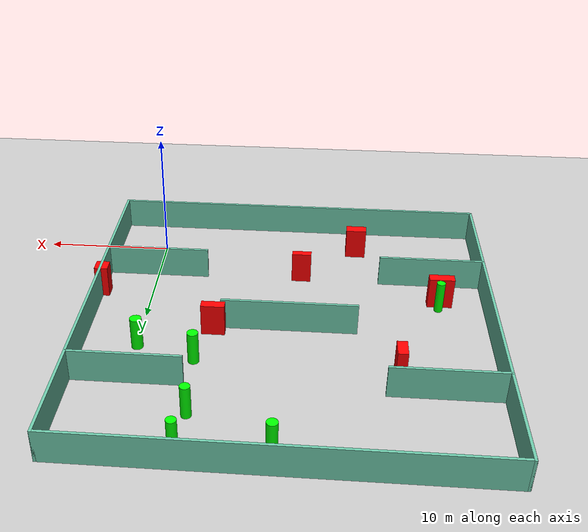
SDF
<sdf version="1.7">
 <world name="default">
  <light name="sun" type="directional">
   <pose>0 0 10 0 -0 0</pose>
   <diffuse>0.8 0.8 0.8 1</diffuse>
   <specular>0.2 0.2 0.2 1</specular>
   <attenuation>
    <range>1000</range>
    <constant>0.9</constant>
    <linear>0.01</linear>
    <quadratic>0.001</quadratic>
   </attenuation>
   <direction>-0.5 0.1 -0.9</direction>
   <spot><inner_angle>0</inner_angle><outer_angle>0</outer_angle><falloff>0</falloff></spot>
  </light>
  <model name="ground_plane">
   <static>1</static>
   <link name="link">
    <collision name="collision">
     <geometry><plane><normal>0 0 1</normal><size>100 100</size></plane></geometry>
     <surface>
      <contact><collide_bitmask>65535</collide_bitmask></contact>
      <friction><ode><mu>100</mu><mu2>50</mu2></ode></friction>
     </surface>
    </collision>
    <visual name="visual">
     <cast_shadows>0</cast_shadows>
     <geometry><plane><normal>0 0 1</normal><size>100 100</size></plane></geometry>
     <material>
      <script><uri>file://media/materials/scripts/gazebo.material</uri><name>Gazebo/Grey</name></script>
     </material>
    </visual>
   </link>
  </model>
  <gravity>0 0 -9.8</gravity>
  <magnetic_field>6e-06 2.3e-05 -4.2e-05</magnetic_field>
  <atmosphere type="adiabatic"/>
  <physics type="ode">
   <max_step_size>0.001</max_step_size>
   <real_time_factor>1</real_time_factor>
   <real_time_update_rate>1000</real_time_update_rate>
  </physics>
  <scene><ambient>0.4 0.4 0.4 1</ambient><background>0.7 0.7 0.7 1</background><shadows>1</shadows></scene>
  <spherical_coordinates>
   <surface_model>EARTH_WGS84</surface_model>
   <latitude_deg>0</latitude_deg>
   <longitude_deg>0</longitude_deg>
   <elevation>0</elevation>
   <heading_deg>0</heading_deg>
  </spherical_coordinates>
  <model name="my_base_walls">
   <link name="Wall_10">
    <collision name="Wall_10_Collision">
     <geometry><box><size>8.2 0.2 2.5</size></box></geometry>
     <pose>0 0 1.25 0 -0 0</pose>
    </collision>
    <visual name="Wall_10_Visual">
     <pose>0 0 1.25 0 -0 0</pose>
     <geometry><box><size>8.2 0.2 2.5</size></box></geometry>
     <material>
      <script><uri>file://media/materials/scripts/gazebo.material</uri><name>Gazebo/Grey</name></script>
      <ambient>0.435294 0.796078 0.67451 1</ambient>
     </material>
     <meta><layer>0</layer></meta>
    </visual>
    <pose>-11 -7 0 0 -0 0</pose>
   </link>
   <link name="Wall_12">
    <collision name="Wall_12_Collision">
     <geometry><box><size>8.2 0.2 2.5</size></box></geometry>
     <pose>0 0 1.25 0 -0 0</pose>
    </collision>
    <visual name="Wall_12_Visual">
     <pose>0 0 1.25 0 -0 0</pose>
     <geometry><box><size>8.2 0.2 2.5</size></box></geometry>
     <material>
      <script><uri>file://media/materials/scripts/gazebo.material</uri><name>Gazebo/Grey</name></script>
      <ambient>0.435294 0.796078 0.67451 1</ambient>
     </material>
     <meta><layer>0</layer></meta>
    </visual>
    <pose>-11 7 0 0 -0 0</pose>
   </link>
   <link name="Wall_14">
    <collision name="Wall_14_Collision">
     <geometry><box><size>8.2 0.2 2.5</size></box></geometry>
     <pose>0 0 1.25 0 -0 0</pose>
    </collision>
    <visual name="Wall_14_Visual">
     <pose>0 0 1.25 0 -0 0</pose>
     <geometry><box><size>8.2 0.2 2.5</size></box></geometry>
     <material>
      <script><uri>file://media/materials/scripts/gazebo.material</uri><name>Gazebo/Grey</name></script>
      <ambient>0.435294 0.796078 0.67451 1</ambient>
     </material>
     <meta><layer>0</layer></meta>
    </visual>
    <pose>11 7 0 0 -0 3.14159</pose>
   </link>
   <link name="Wall_16">
    <collision name="Wall_16_Collision">
     <geometry><box><size>10.2 0.2 2.5</size></box></geometry>
     <pose>0 0 1.25 0 -0 0</pose>
    </collision>
    <visual name="Wall_16_Visual">
     <pose>0 0 1.25 0 -0 0</pose>
     <geometry><box><size>10.2 0.2 2.5</size></box></geometry>
     <material>
      <script><uri>file://media/materials/scripts/gazebo.material</uri><name>Gazebo/Grey</name></script>
      <ambient>0.435294 0.796078 0.67451 1</ambient>
     </material>
     <meta><layer>0</layer></meta>
    </visual>
    <pose>0 0 0 0 -0 3.14159</pose>
   </link>
   <link name="Wall_2">
    <collision name="Wall_2_Collision">
     <geometry><box><size>30.2 0.2 2.5</size></box></geometry>
     <pose>0 0 1.25 0 -0 0</pose>
    </collision>
    <visual name="Wall_2_Visual">
     <pose>0 0 1.25 0 -0 0</pose>
     <geometry><box><size>30.2 0.2 2.5</size></box></geometry>
     <material>
      <script><uri>file://media/materials/scripts/gazebo.material</uri><name>Gazebo/Grey</name></script>
      <ambient>0.435294 0.796078 0.67451 1</ambient>
     </material>
     <meta><layer>0</layer></meta>
    </visual>
    <pose>0 -15 0 0 -0 3.14159</pose>
   </link>
   <link name="Wall_3">
    <collision name="Wall_3_Collision">
     <geometry><box><size>30.2 0.2 2.5</size></box></geometry>
     <pose>0 0 1.25 0 -0 0</pose>
    </collision>
    <visual name="Wall_3_Visual">
     <pose>0 0 1.25 0 -0 0</pose>
     <geometry><box><size>30.2 0.2 2.5</size></box></geometry>
     <material>
      <script><uri>file://media/materials/scripts/gazebo.material</uri><name>Gazebo/Grey</name></script>
      <ambient>0.435294 0.796078 0.67451 1</ambient>
     </material>
     <meta><layer>0</layer></meta>
    </visual>
    <pose>-15 0 0 0 -0 1.5708</pose>
   </link>
   <link name="Wall_4">
    <collision name="Wall_4_Collision">
     <geometry><box><size>30.2 0.2 2.5</size></box></geometry>
     <pose>0 0 1.25 0 -0 0</pose>
    </collision>
    <visual name="Wall_4_Visual">
     <pose>0 0 1.25 0 -0 0</pose>
     <geometry><box><size>30.2 0.2 2.5</size></box></geometry>
     <material>
      <script><uri>file://media/materials/scripts/gazebo.material</uri><name>Gazebo/Grey</name></script>
      <ambient>0.435294 0.796078 0.67451 1</ambient>
     </material>
     <meta><layer>0</layer></meta>
    </visual>
    <pose>0 15 0 0 -0 0</pose>
   </link>
   <link name="Wall_6">
    <collision name="Wall_6_Collision">
     <geometry><box><size>30.2 0.2 2.5</size></box></geometry>
     <pose>0 0 1.25 0 -0 0</pose>
    </collision>
    <visual name="Wall_6_Visual">
     <pose>0 0 1.25 0 -0 0</pose>
     <geometry><box><size>30.2 0.2 2.5</size></box></geometry>
     <material>
      <script><uri>file://media/materials/scripts/gazebo.material</uri><name>Gazebo/Grey</name></script>
      <ambient>0.435294 0.796078 0.67451 1</ambient>
     </material>
     <meta><layer>0</layer></meta>
    </visual>
    <pose>15 0 0 0 -0 1.5708</pose>
   </link>
   <link name="Wall_8">
    <collision name="Wall_8_Collision">
     <geometry><box><size>8.2 0.2 2.5</size></box></geometry>
     <pose>0 0 1.25 0 -0 0</pose>
    </collision>
    <visual name="Wall_8_Visual">
     <pose>0 0 1.25 0 -0 0</pose>
     <geometry><box><size>8.2 0.2 2.5</size></box></geometry>
     <material>
      <script><uri>file://media/materials/scripts/gazebo.material</uri><name>Gazebo/Grey</name></script>
      <ambient>0.435294 0.796078 0.67451 1</ambient>
     </material>
     <meta><layer>0</layer></meta>
    </visual>
    <pose>11 -7 0 0 -0 3.14159</pose>
   </link>
   <static>1</static>
   <pose>-11 11 0 0 -0 0</pose>
  </model>
  <model name="cylinder1">
   <static>1</static>
   <link name="link">
    <inertial>
     <mass>1</mass>
     <inertia><ixx>0.5</ixx><ixy>0</ixy><ixz>0</ixz><iyy>0.5</iyy><iyz>0</iyz><izz>1</izz></inertia>
    </inertial>
    <collision name="collision">
     <geometry><cylinder><radius>0.3910759092996346</radius><length>2.5</length></cylinder></geometry>
    </collision>
    <visual name="visual">
     <geometry><cylinder><radius>0.3910759092996346</radius><length>2.5</length></cylinder></geometry>
     <material>
      <ambient>0 1 0 1</ambient>
      <diffuse>0 1 0 1</diffuse>
      <specular>0.1 0.1 0.1 1</specular>
      <emissive>0 0 0 0</emissive>
     </material>
    </visual>
   </link>
   <pose>-10.543926389782811 24.044908329638787 1.25 0 0 0</pose>
  </model>
  <model name="cylinder2">
   <static>1</static>
   <link name="link">
    <inertial>
     <mass>1</mass>
     <inertia><ixx>0.5</ixx><ixy>0</ixy><ixz>0</ixz><iyy>0.5</iyy><iyz>0</iyz><izz>1</izz></inertia>
    </inertial>
    <collision name="collision">
     <geometry><cylinder><radius>0.3614001284814852</radius><length>2.5</length></cylinder></geometry>
    </collision>
    <visual name="visual">
     <geometry><cylinder><radius>0.3614001284814852</radius><length>2.5</length></cylinder></geometry>
     <material>
      <ambient>0 1 0 1</ambient>
      <diffuse>0 1 0 1</diffuse>
      <specular>0.1 0.1 0.1 1</specular>
      <emissive>0 0 0 0</emissive>
     </material>
    </visual>
   </link>
   <pose>-4.336738064915341 24.35209528997487 1.25 0 0 0</pose>
  </model>
  <model name="cylinder3">
   <static>1</static>
   <link name="link">
    <inertial>
     <mass>1</mass>
     <inertia><ixx>0.5</ixx><ixy>0</ixy><ixz>0</ixz><iyy>0.5</iyy><iyz>0</iyz><izz>1</izz></inertia>
    </inertial>
    <collision name="collision">
     <geometry><cylinder><radius>0.32779057666356853</radius><length>2.5</length></cylinder></geometry>
    </collision>
    <visual name="visual">
     <geometry><cylinder><radius>0.32779057666356853</radius><length>2.5</length></cylinder></geometry>
     <material>
      <ambient>0 1 0 1</ambient>
      <diffuse>0 1 0 1</diffuse>
      <specular>0.1 0.1 0.1 1</specular>
      <emissive>0 0 0 0</emissive>
     </material>
    </visual>
   </link>
   <pose>-22.41250791460306 7.441344668031153 1.25 0 0 0</pose>
  </model>
  <model name="cylinder4">
   <static>1</static>
   <link name="link">
    <inertial>
     <mass>1</mass>
     <inertia><ixx>0.5</ixx><ixy>0</ixy><ixz>0</ixz><iyy>0.5</iyy><iyz>0</iyz><izz>1</izz></inertia>
    </inertial>
    <collision name="collision">
     <geometry><cylinder><radius>0.43364310368049597</radius><length>2.5</length></cylinder></geometry>
    </collision>
    <visual name="visual">
     <geometry><cylinder><radius>0.43364310368049597</radius><length>2.5</length></cylinder></geometry>
     <material>
      <ambient>0 1 0 1</ambient>
      <diffuse>0 1 0 1</diffuse>
      <specular>0.1 0.1 0.1 1</specular>
      <emissive>0 0 0 0</emissive>
     </material>
    </visual>
   </link>
   <pose>-0.09856751498935168 13.936823381247539 1.25 0 0 0</pose>
  </model>
  <model name="cylinder5">
   <static>1</static>
   <link name="link">
    <inertial>
     <mass>1</mass>
     <inertia><ixx>0.5</ixx><ixy>0</ixy><ixz>0</ixz><iyy>0.5</iyy><iyz>0</iyz><izz>1</izz></inertia>
    </inertial>
    <collision name="collision">
     <geometry><cylinder><radius>0.408134947836024</radius><length>2.5</length></cylinder></geometry>
    </collision>
    <visual name="visual">
     <geometry><cylinder><radius>0.408134947836024</radius><length>2.5</length></cylinder></geometry>
     <material>
      <ambient>0 1 0 1</ambient>
      <diffuse>0 1 0 1</diffuse>
      <specular>0.1 0.1 0.1 1</specular>
      <emissive>0 0 0 0</emissive>
     </material>
    </visual>
   </link>
   <pose>-4.404665549904042 15.316174839319881 1.25 0 0 0</pose>
  </model>
  <model name="cylinder6">
   <static>1</static>
   <link name="link">
    <inertial>
     <mass>1</mass>
     <inertia><ixx>0.5</ixx><ixy>0</ixy><ixz>0</ixz><iyy>0.5</iyy><iyz>0</iyz><izz>1</izz></inertia>
    </inertial>
    <collision name="collision">
     <geometry><cylinder><radius>0.3696178804682354</radius><length>2.5</length></cylinder></geometry>
    </collision>
    <visual name="visual">
     <geometry><cylinder><radius>0.3696178804682354</radius><length>2.5</length></cylinder></geometry>
     <material>
      <ambient>0 1 0 1</ambient>
      <diffuse>0 1 0 1</diffuse>
      <specular>0.1 0.1 0.1 1</specular>
      <emissive>0 0 0 0</emissive>
     </material>
    </visual>
   </link>
   <pose>-4.709022485856423 21.100800691099465 1.25 0 0 0</pose>
  </model>
  <model name="box1">
   <static>1</static>
   <link name="link">
    <inertial>
     <mass>1</mass>
     <inertia><ixx>0.083</ixx><ixy>0</ixy><ixz>0</ixz><iyy>0.083</iyy><iyz>0</iyz><izz>0.083</izz></inertia>
    </inertial>
    <collision name="collision">
     <geometry><box><size>1.51436036473671 0.5505772998287013 2.5</size></box></geometry>
    </collision>
    <visual name="visual">
     <geometry><box><size>1.51436036473671 0.5505772998287013 2.5</size></box></geometry>
     <material>
      <ambient>1 0 0 1</ambient>
      <diffuse>1 0 0 1</diffuse>
      <specular>0.1 0.1 0.1 1</specular>
      <emissive>0 0 0 0</emissive>
     </material>
    </visual>
    <sensor name="my_contact" type="contact">
     <contact><collision>box_collision</collision><topic>__default_topic__</topic></contact>
    </sensor>
   </link>
   <pose>-11.683922036272897 3.8831597382205123 1.25 0 0 0</pose>
  </model>
  <model name="box2">
   <static>1</static>
   <link name="link">
    <inertial>
     <mass>1</mass>
     <inertia><ixx>0.083</ixx><ixy>0</ixy><ixz>0</ixz><iyy>0.083</iyy><iyz>0</iyz><izz>0.083</izz></inertia>
    </inertial>
    <collision name="collision">
     <geometry><box><size>1.9189223459836036 0.7781623861234503 2.5</size></box></geometry>
    </collision>
    <visual name="visual">
     <geometry><box><size>1.9189223459836036 0.7781623861234503 2.5</size></box></geometry>
     <material>
      <ambient>1 0 0 1</ambient>
      <diffuse>1 0 0 1</diffuse>
      <specular>0.1 0.1 0.1 1</specular>
      <emissive>0 0 0 0</emissive>
     </material>
    </visual>
    <sensor name="my_contact" type="contact">
     <contact><collision>box_collision</collision><topic>__default_topic__</topic></contact>
    </sensor>
   </link>
   <pose>-22.542969687349025 6.664330334324443 1.25 0 0 0</pose>
  </model>
  <model name="box3">
   <static>1</static>
   <link name="link">
    <inertial>
     <mass>1</mass>
     <inertia><ixx>0.083</ixx><ixy>0</ixy><ixz>0</ixz><iyy>0.083</iyy><iyz>0</iyz><izz>0.083</izz></inertia>
    </inertial>
    <collision name="collision">
     <geometry><box><size>0.7463108569721607 1.468153514986925 2.5</size></box></geometry>
    </collision>
    <visual name="visual">
     <geometry><box><size>0.7463108569721607 1.468153514986925 2.5</size></box></geometry>
     <material>
      <ambient>1 0 0 1</ambient>
      <diffuse>1 0 0 1</diffuse>
      <specular>0.1 0.1 0.1 1</specular>
      <emissive>0 0 0 0</emissive>
     </material>
    </visual>
    <sensor name="my_contact" type="contact">
     <contact><collision>box_collision</collision><topic>__default_topic__</topic></contact>
    </sensor>
   </link>
   <pose>-18.980716839514372 15.824445411327883 1.25 0 0 0</pose>
  </model>
  <model name="box4">
   <static>1</static>
   <link name="link">
    <inertial>
     <mass>1</mass>
     <inertia><ixx>0.083</ixx><ixy>0</ixy><ixz>0</ixz><iyy>0.083</iyy><iyz>0</iyz><izz>0.083</izz></inertia>
    </inertial>
    <collision name="collision">
     <geometry><box><size>1.6139706293451626 0.844752839260005 2.5</size></box></geometry>
    </collision>
    <visual name="visual">
     <geometry><box><size>1.6139706293451626 0.844752839260005 2.5</size></box></geometry>
     <material>
      <ambient>1 0 0 1</ambient>
      <diffuse>1 0 0 1</diffuse>
      <specular>0.1 0.1 0.1 1</specular>
      <emissive>0 0 0 0</emissive>
     </material>
    </visual>
    <sensor name="my_contact" type="contact">
     <contact><collision>box_collision</collision><topic>__default_topic__</topic></contact>
    </sensor>
   </link>
   <pose>-16.11494159856108 -0.4257813402845989 1.25 0 0 0</pose>
  </model>
  <model name="box5">
   <static>1</static>
   <link name="link">
    <inertial>
     <mass>1</mass>
     <inertia><ixx>0.083</ixx><ixy>0</ixy><ixz>0</ixz><iyy>0.083</iyy><iyz>0</iyz><izz>0.083</izz></inertia>
    </inertial>
    <collision name="collision">
     <geometry><box><size>1.0389995349925076 1.0991766728225436 2.5</size></box></geometry>
    </collision>
    <visual name="visual">
     <geometry><box><size>1.0389995349925076 1.0991766728225436 2.5</size></box></geometry>
     <material>
      <ambient>1 0 0 1</ambient>
      <diffuse>1 0 0 1</diffuse>
      <specular>0.1 0.1 0.1 1</specular>
      <emissive>0 0 0 0</emissive>
     </material>
    </visual>
    <sensor name="my_contact" type="contact">
     <contact><collision>box_collision</collision><topic>__default_topic__</topic></contact>
    </sensor>
   </link>
   <pose>3.9082153126386316 6.9852454476724475 1.25 0 0 0</pose>
  </model>
  <model name="box6">
   <static>1</static>
   <link name="link">
    <inertial>
     <mass>1</mass>
     <inertia><ixx>0.083</ixx><ixy>0</ixy><ixz>0</ixz><iyy>0.083</iyy><iyz>0</iyz><izz>0.083</izz></inertia>
    </inertial>
    <collision name="collision">
     <geometry><box><size>1.759361850030751 0.7131269896192377 2.5</size></box></geometry>
    </collision>
    <visual name="visual">
     <geometry><box><size>1.759361850030751 0.7131269896192377 2.5</size></box></geometry>
     <material>
      <ambient>1 0 0 1</ambient>
      <diffuse>1 0 0 1</diffuse>
      <specular>0.1 0.1 0.1 1</specular>
      <emissive>0 0 0 0</emissive>
     </material>
    </visual>
    <sensor name="my_contact" type="contact">
     <contact><collision>box_collision</collision><topic>__default_topic__</topic></contact>
    </sensor>
   </link>
   <pose>-5.408755971354484 11.676143498102945 1.25 0 0 0</pose>
  </model>
 </world>
</sdf>
